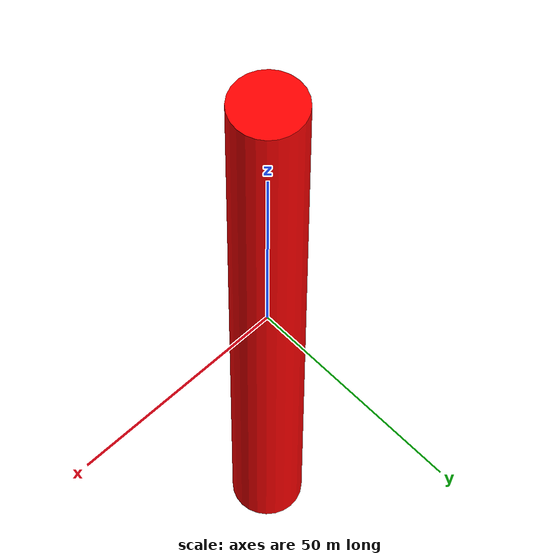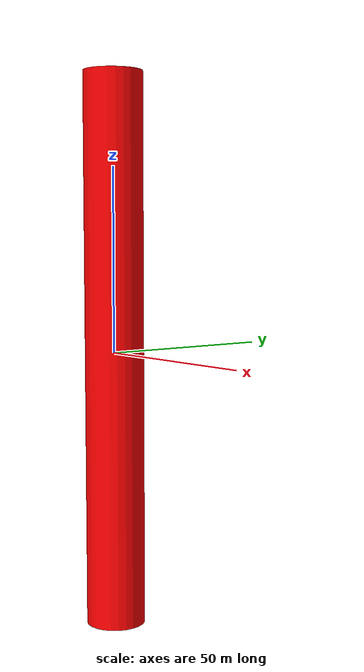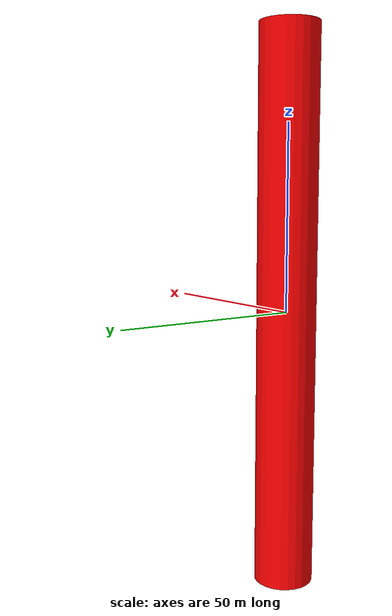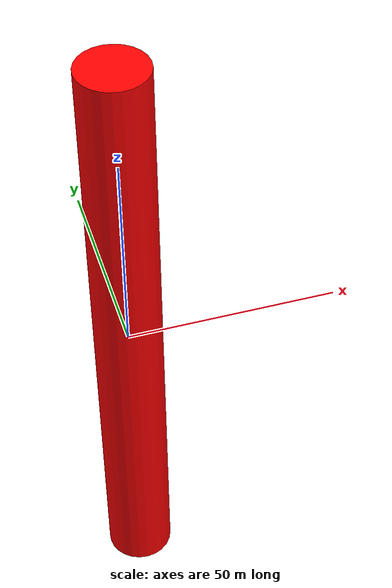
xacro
<?xml version="1.0" encoding="utf-8"?>
<robot xmlns:xacro="http://www.ros.org/wiki/xacro" name="cylinder">

  <xacro:property name="r" value="8" />
  <xacro:property name="h" value="150" />
  <xacro:property name="x" value="0" />
  <xacro:property name="y" value="0" />
  <xacro:property name="z" value="0" />

  <!-- Used for fixing robot to Gazebo 'base_link' -->
  <link name="world"/>

  <joint name="world_fixed" type="fixed">
    <parent link="world"/>
    <child link="cylinder_link"/>
    <origin xyz="0 0 0" rpy="0 0 0"/>
  </joint>

  <link name="cylinder_link">
    <visual>
      <origin xyz="0 0 0" rpy="0 0 0"/>
      <geometry>
        <cylinder length="${h}" radius="${r}"/>
      </geometry>
      <material name="red">
        <color rgba="1 0 0 1"/>
      </material>
    </visual>
    <inertial>
      <origin xyz="0 0 0" rpy="0 0 0"/>
      <mass value="100.0"/>
      <inertia ixx="1"  ixy="0"  ixz="0" iyy="1" iyz="0" izz="1" />
    </inertial>
    <collision>
      <origin xyz="0 0 0" rpy="0 0 0"/>
      <geometry>
        <cylinder length="${h}" radius="${r}"/>
      </geometry>
    </collision>
  </link>

  <gazebo reference="cylinder_link">
     <turnGravityOff>true</turnGravityOff>
     <static>true</static>
     <kp>1000000</kp>
     <kd>1.0</kd>
     <mu1>100.0</mu1>
     <mu2>100.0</mu2>
     <minDepth>0.001</minDepth>
  </gazebo>
</robot>
